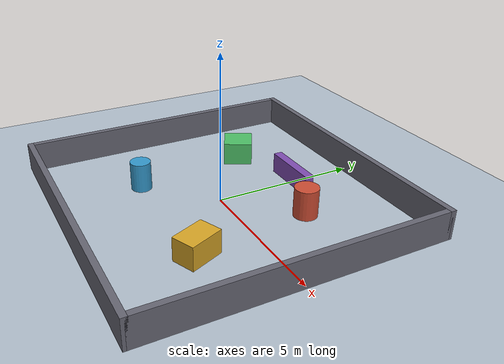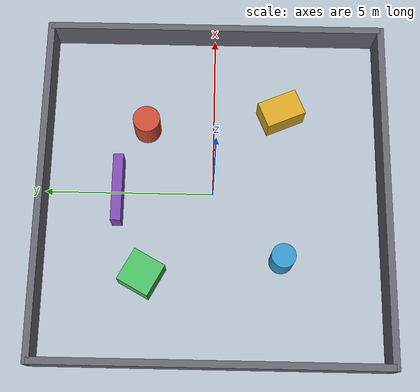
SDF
<?xml version="1.0" ?>
<sdf version="1.8">
  <world name="amr_world">
    <physics name="1ms" type="ignored">
      <max_step_size>0.001</max_step_size>
      <real_time_factor>1.0</real_time_factor>
    </physics>

    <!-- Essential Gazebo Harmonic System Plugins -->
    <plugin filename="gz-sim-physics-system" name="gz::sim::systems::Physics" />
    <plugin filename="gz-sim-user-commands-system" name="gz::sim::systems::UserCommands" />
    <plugin filename="gz-sim-scene-broadcaster-system" name="gz::sim::systems::SceneBroadcaster" />
    <plugin filename="gz-sim-sensors-system" name="gz::sim::systems::Sensors">
      <render_engine>ogre2</render_engine>
    </plugin>
    <plugin filename="gz-sim-imu-system" name="gz::sim::systems::Imu" />

    <!-- Ambient & Sun Lighting -->
    <light type="directional" name="sun">
      <cast_shadows>true</cast_shadows>
      <pose>0 0 10 0 0 0</pose>
      <diffuse>0.85 0.85 0.85 1</diffuse>
      <specular>0.2 0.2 0.2 1</specular>
      <attenuation>
        <range>1000</range>
        <constant>0.9</constant>
        <linear>0.01</linear>
        <quadratic>0.001</quadratic>
      </attenuation>
      <direction>-0.5 0.1 -0.9</direction>
    </light>

    <!-- Ground Plane -->
    <model name="ground_plane">
      <static>true</static>
      <link name="link">
        <collision name="collision">
          <geometry>
            <plane>
              <normal>0 0 1</normal>
              <size>50 50</size>
            </plane>
          </geometry>
          <surface>
            <friction>
              <ode>
                <mu>1.0</mu>
                <mu2>1.0</mu2>
              </ode>
            </friction>
          </surface>
        </collision>
        <visual name="visual">
          <geometry>
            <plane>
              <normal>0 0 1</normal>
              <size>50 50</size>
            </plane>
          </geometry>
          <material>
            <ambient>0.7 0.75 0.8 1</ambient>
            <diffuse>0.7 0.75 0.8 1</diffuse>
            <specular>0.2 0.2 0.2 1</specular>
          </material>
        </visual>
      </link>
    </model>

    <!-- Arena Boundary Walls (10m x 10m enclosure) -->
    <model name="wall_north">
      <static>true</static>
      <pose>0 5 0.5 0 0 0</pose>
      <link name="link">
        <collision name="c">
          <geometry><box><size>10.2 0.2 1.0</size></box></geometry>
        </collision>
        <visual name="v">
          <geometry><box><size>10.2 0.2 1.0</size></box></geometry>
          <material>
            <ambient>0.3 0.3 0.35 1</ambient>
            <diffuse>0.4 0.4 0.45 1</diffuse>
          </material>
        </visual>
      </link>
    </model>

    <model name="wall_south">
      <static>true</static>
      <pose>0 -5 0.5 0 0 0</pose>
      <link name="link">
        <collision name="c">
          <geometry><box><size>10.2 0.2 1.0</size></box></geometry>
        </collision>
        <visual name="v">
          <geometry><box><size>10.2 0.2 1.0</size></box></geometry>
          <material>
            <ambient>0.3 0.3 0.35 1</ambient>
            <diffuse>0.4 0.4 0.45 1</diffuse>
          </material>
        </visual>
      </link>
    </model>

    <model name="wall_east">
      <static>true</static>
      <pose>5 0 0.5 0 0 0</pose>
      <link name="link">
        <collision name="c">
          <geometry><box><size>0.2 10.0 1.0</size></box></geometry>
        </collision>
        <visual name="v">
          <geometry><box><size>0.2 10.0 1.0</size></box></geometry>
          <material>
            <ambient>0.3 0.3 0.35 1</ambient>
            <diffuse>0.4 0.4 0.45 1</diffuse>
          </material>
        </visual>
      </link>
    </model>

    <model name="wall_west">
      <static>true</static>
      <pose>-5 0 0.5 0 0 0</pose>
      <link name="link">
        <collision name="c">
          <geometry><box><size>0.2 10.0 1.0</size></box></geometry>
        </collision>
        <visual name="v">
          <geometry><box><size>0.2 10.0 1.0</size></box></geometry>
          <material>
            <ambient>0.3 0.3 0.35 1</ambient>
            <diffuse>0.4 0.4 0.45 1</diffuse>
          </material>
        </visual>
      </link>
    </model>

    <!-- Obstacles / Pillars for LiDAR Scan & Navigation -->
    <model name="pillar_1">
      <static>true</static>
      <pose>2.0 2.0 0.5 0 0 0</pose>
      <link name="link">
        <collision name="c">
          <geometry><cylinder><radius>0.4</radius><length>1.0</length></cylinder></geometry>
        </collision>
        <visual name="v">
          <geometry><cylinder><radius>0.4</radius><length>1.0</length></cylinder></geometry>
          <material>
            <ambient>0.8 0.3 0.2 1</ambient>
            <diffuse>0.8 0.3 0.2 1</diffuse>
          </material>
        </visual>
      </link>
    </model>

    <model name="pillar_2">
      <static>true</static>
      <pose>-2.0 -2.0 0.5 0 0 0</pose>
      <link name="link">
        <collision name="c">
          <geometry><cylinder><radius>0.35</radius><length>1.0</length></cylinder></geometry>
        </collision>
        <visual name="v">
          <geometry><cylinder><radius>0.35</radius><length>1.0</length></cylinder></geometry>
          <material>
            <ambient>0.2 0.6 0.8 1</ambient>
            <diffuse>0.2 0.6 0.8 1</diffuse>
          </material>
        </visual>
      </link>
    </model>

    <model name="box_obstacle_1">
      <static>true</static>
      <pose>2.5 -2.0 0.4 0 0 0.4</pose>
      <link name="link">
        <collision name="c">
          <geometry><box><size>0.8 1.2 0.8</size></box></geometry>
        </collision>
        <visual name="v">
          <geometry><box><size>0.8 1.2 0.8</size></box></geometry>
          <material>
            <ambient>0.85 0.65 0.15 1</ambient>
            <diffuse>0.85 0.65 0.15 1</diffuse>
          </material>
        </visual>
      </link>
    </model>

    <model name="box_obstacle_2">
      <static>true</static>
      <pose>-2.5 2.0 0.4 0 0 -0.5</pose>
      <link name="link">
        <collision name="c">
          <geometry><box><size>1.0 1.0 0.8</size></box></geometry>
        </collision>
        <visual name="v">
          <geometry><box><size>1.0 1.0 0.8</size></box></geometry>
          <material>
            <ambient>0.3 0.75 0.4 1</ambient>
            <diffuse>0.3 0.75 0.4 1</diffuse>
          </material>
        </visual>
      </link>
    </model>

    <model name="barrier_center">
      <static>true</static>
      <pose>0.0 2.8 0.35 0 0 0</pose>
      <link name="link">
        <collision name="c">
          <geometry><box><size>2.0 0.3 0.7</size></box></geometry>
        </collision>
        <visual name="v">
          <geometry><box><size>2.0 0.3 0.7</size></box></geometry>
          <material>
            <ambient>0.5 0.3 0.7 1</ambient>
            <diffuse>0.5 0.3 0.7 1</diffuse>
          </material>
        </visual>
      </link>
    </model>

  </world>
</sdf>
